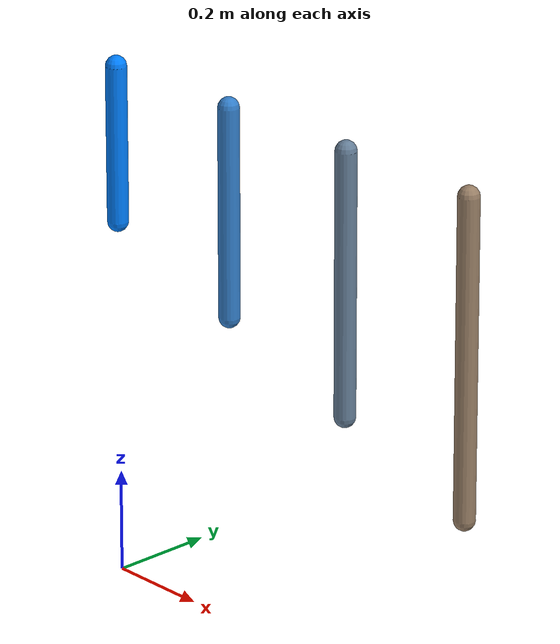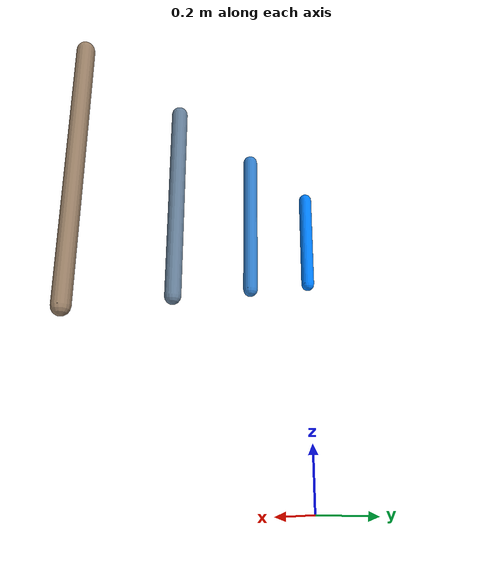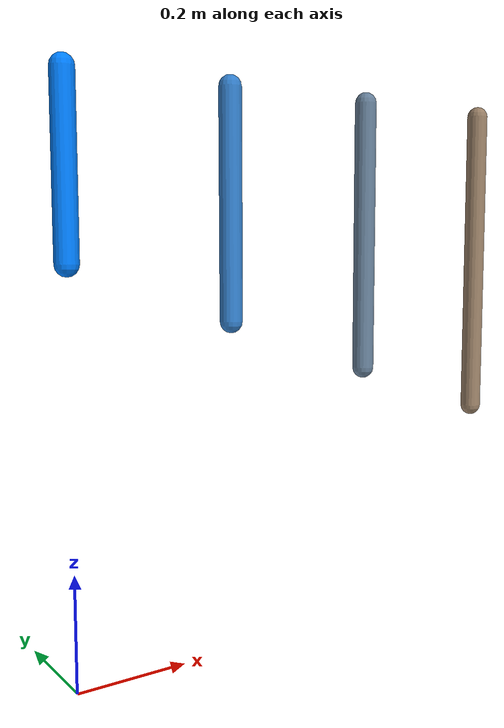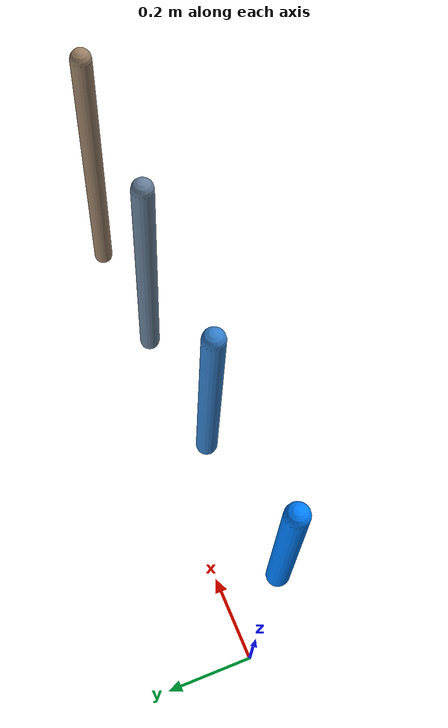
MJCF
<mujoco model="MuJoCo Model">
  <compiler angle="radian"/>

  <worldbody>
    <body name="pend0" pos="0 0 1">
      <joint name="hinge0" damping="0.05" axis="0 1 0"/>
      <geom size="0.02 0.15" pos="0 0 -0.15" type="capsule" rgba="0 0.5 1 1"/>
    </body>
    <body name="pend1" pos="0.3 0 1">
      <joint name="hinge1" damping="0.05" axis="0 1 0"/>
      <geom size="0.02 0.2" pos="0 0 -0.2" type="capsule" rgba="0.2 0.5 0.8 1"/>
    </body>
    <body name="pend2" pos="0.6 0 1">
      <joint name="hinge2" damping="0.05" axis="0 1 0"/>
      <geom size="0.02 0.25" pos="0 0 -0.25" type="capsule" rgba="0.4 0.5 0.6 1"/>
    </body>
    <body name="pend3" pos="0.9 0 1">
      <joint name="hinge3" damping="0.05" axis="0 1 0"/>
      <geom size="0.02 0.3" pos="0 0 -0.3" type="capsule" rgba="0.6 0.5 0.4 1"/>
    </body>
  </worldbody>
</mujoco>
